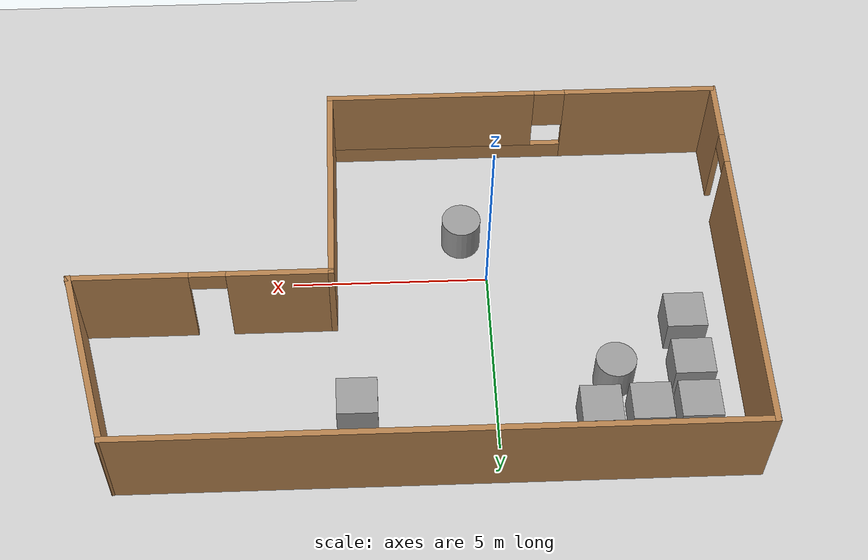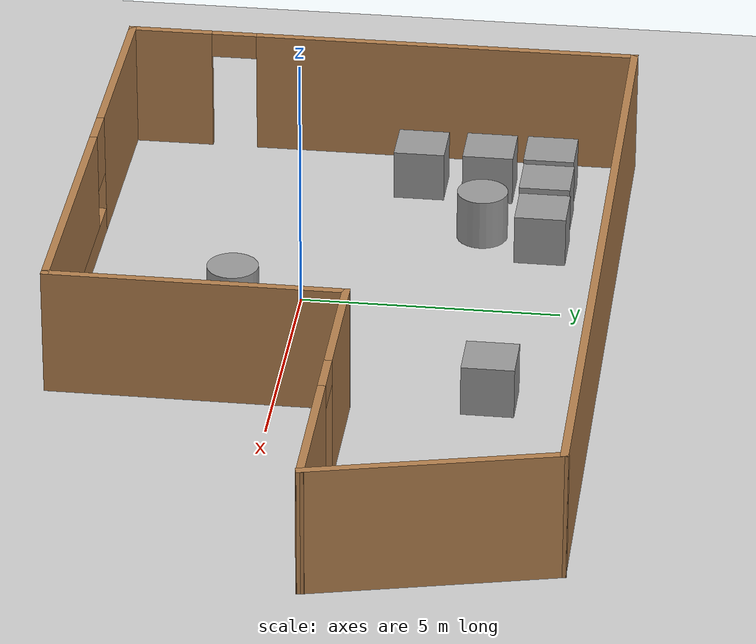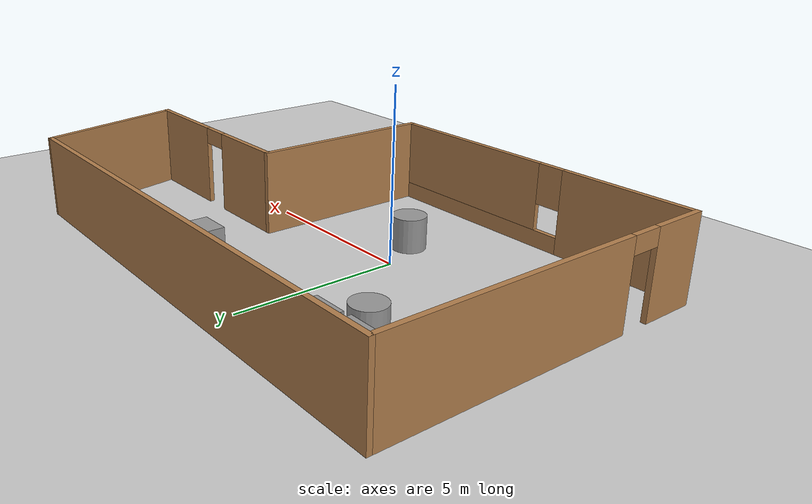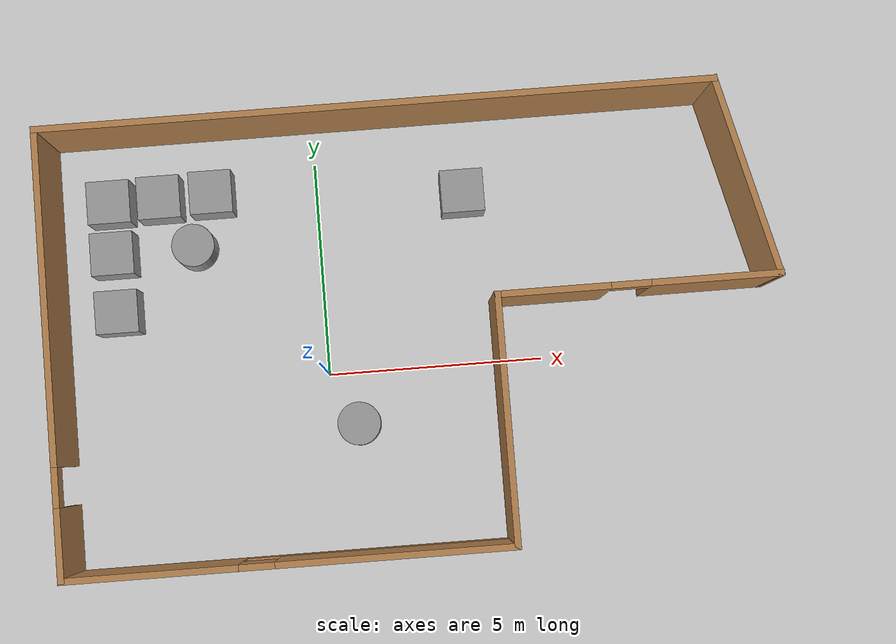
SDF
<sdf version="1.7">
 <world name="default">
  <light name="sun" type="directional">
   <pose>0 0 10 0 -0 0</pose>
   <diffuse>0.8 0.8 0.8 1</diffuse>
   <specular>0.2 0.2 0.2 1</specular>
   <attenuation>
    <range>1000</range>
    <constant>0.9</constant>
    <linear>0.01</linear>
    <quadratic>0.001</quadratic>
   </attenuation>
   <direction>-0.5 0.1 -0.9</direction>
   <spot><inner_angle>0</inner_angle><outer_angle>0</outer_angle><falloff>0</falloff></spot>
  </light>
  <model name="ground_plane">
   <static>1</static>
   <link name="link">
    <collision name="collision">
     <geometry><plane><normal>0 0 1</normal><size>100 100</size></plane></geometry>
     <surface>
      <contact><collide_bitmask>65535</collide_bitmask></contact>
      <friction><ode><mu>100</mu><mu2>50</mu2></ode></friction>
     </surface>
    </collision>
    <visual name="visual">
     <cast_shadows>0</cast_shadows>
     <geometry><plane><normal>0 0 1</normal><size>100 100</size></plane></geometry>
     <material>
      <script><uri>file://media/materials/scripts/gazebo.material</uri><name>Gazebo/Grey</name></script>
     </material>
    </visual>
   </link>
  </model>
  <gravity>0 0 -9.8</gravity>
  <magnetic_field>6e-06 2.3e-05 -4.2e-05</magnetic_field>
  <atmosphere type="adiabatic"/>
  <physics type="ode">
   <max_step_size>0.001</max_step_size>
   <real_time_factor>1</real_time_factor>
   <real_time_update_rate>1000</real_time_update_rate>
  </physics>
  <scene><ambient>0.4 0.4 0.4 1</ambient><background>0.7 0.7 0.7 1</background><shadows>1</shadows></scene>
  <spherical_coordinates>
   <surface_model>EARTH_WGS84</surface_model>
   <latitude_deg>0</latitude_deg>
   <longitude_deg>0</longitude_deg>
   <elevation>0</elevation>
   <heading_deg>0</heading_deg>
  </spherical_coordinates>
  <model name="www">
   <pose>2.08124 0.830246 0 0 -0 0</pose>
   <link name="Wall_1">
    <collision name="Wall_1_Collision">
     <geometry><box><size>15.5 0.15 2.5</size></box></geometry>
     <pose>0 0 1.25 0 -0 0</pose>
    </collision>
    <visual name="Wall_1_Visual">
     <pose>0 0 1.25 0 -0 0</pose>
     <geometry><box><size>15.5 0.15 2.5</size></box></geometry>
     <material>
      <script><uri>file://media/materials/scripts/gazebo.material</uri><name>Gazebo/Wood</name></script>
      <ambient>1 1 1 1</ambient>
     </material>
     <meta><layer>0</layer></meta>
    </visual>
    <pose>-0.557832 5.04217 0 0 -0 3.14159</pose>
   </link>
   <link name="Wall_2">
    <pose>-8.23283 -0.007832 0 0 -0 -1.5708</pose>
    <visual name="Wall_2_Visual_0">
     <pose>-1.29555 0 1.25 0 -0 0</pose>
     <geometry><box><size>7.6589 0.15 2.5</size></box></geometry>
     <material>
      <script><uri>file://media/materials/scripts/gazebo.material</uri><name>Gazebo/Wood</name></script>
      <ambient>1 1 1 1</ambient>
     </material>
     <meta><layer>0</layer></meta>
    </visual>
    <collision name="Wall_2_Collision_0">
     <geometry><box><size>7.6589 0.15 2.5</size></box></geometry>
     <pose>-1.29555 0 1.25 0 -0 0</pose>
    </collision>
    <visual name="Wall_2_Visual_1">
     <pose>4.27945 0 1.25 0 -0 0</pose>
     <geometry><box><size>1.6911 0.15 2.5</size></box></geometry>
     <material>
      <script><uri>file://media/materials/scripts/gazebo.material</uri><name>Gazebo/Wood</name></script>
      <ambient>1 1 1 1</ambient>
     </material>
     <meta><layer>0</layer></meta>
    </visual>
    <collision name="Wall_2_Collision_1">
     <geometry><box><size>1.6911 0.15 2.5</size></box></geometry>
     <pose>4.27945 0 1.25 0 -0 0</pose>
    </collision>
    <visual name="Wall_2_Visual_2">
     <pose>2.9839 0 2.25 0 -0 0</pose>
     <geometry><box><size>0.9 0.15 0.5</size></box></geometry>
     <material>
      <script><uri>file://media/materials/scripts/gazebo.material</uri><name>Gazebo/Wood</name></script>
      <ambient>1 1 1 1</ambient>
     </material>
     <meta><layer>0</layer></meta>
    </visual>
    <collision name="Wall_2_Collision_2">
     <geometry><box><size>0.9 0.15 0.5</size></box></geometry>
     <pose>2.9839 0 2.25 0 -0 0</pose>
    </collision>
   </link>
   <link name="Wall_3">
    <pose>-3.18283 -5.05783 0 0 -0 0</pose>
    <visual name="Wall_3_Visual_0">
     <pose>-3.12725 0 1.25 0 -0 0</pose>
     <geometry><box><size>3.9955 0.15 2.5</size></box></geometry>
     <material>
      <script><uri>file://media/materials/scripts/gazebo.material</uri><name>Gazebo/Wood</name></script>
      <ambient>1 1 1 1</ambient>
     </material>
     <meta><layer>0</layer></meta>
    </visual>
    <collision name="Wall_3_Collision_0">
     <geometry><box><size>3.9955 0.15 2.5</size></box></geometry>
     <pose>-3.12725 0 1.25 0 -0 0</pose>
    </collision>
    <visual name="Wall_3_Visual_1">
     <pose>1.99775 0 0.25 0 -0 0</pose>
     <geometry><box><size>6.2545 0.15 0.5</size></box></geometry>
     <material>
      <script><uri>file://media/materials/scripts/gazebo.material</uri><name>Gazebo/Wood</name></script>
      <ambient>1 1 1 1</ambient>
     </material>
     <meta><layer>0</layer></meta>
    </visual>
    <collision name="Wall_3_Collision_1">
     <geometry><box><size>6.2545 0.15 0.5</size></box></geometry>
     <pose>1.99775 0 0.25 0 -0 0</pose>
    </collision>
    <visual name="Wall_3_Visual_2">
     <pose>2.39775 0 1.5 0 -0 0</pose>
     <geometry><box><size>5.4545 0.15 2</size></box></geometry>
     <material>
      <script><uri>file://media/materials/scripts/gazebo.material</uri><name>Gazebo/Wood</name></script>
      <ambient>1 1 1 1</ambient>
     </material>
     <meta><layer>0</layer></meta>
    </visual>
    <collision name="Wall_3_Collision_2">
     <geometry><box><size>5.4545 0.15 2</size></box></geometry>
     <pose>2.39775 0 1.5 0 -0 0</pose>
    </collision>
    <visual name="Wall_3_Visual_3">
     <pose>-0.729503 0 1.9 0 -0 0</pose>
     <geometry><box><size>0.8 0.15 1.2</size></box></geometry>
     <material>
      <script><uri>file://media/materials/scripts/gazebo.material</uri><name>Gazebo/Wood</name></script>
      <ambient>1 1 1 1</ambient>
     </material>
     <meta><layer>0</layer></meta>
    </visual>
    <collision name="Wall_3_Collision_3">
     <geometry><box><size>0.8 0.15 1.2</size></box></geometry>
     <pose>-0.729503 0 1.9 0 -0 0</pose>
    </collision>
   </link>
   <link name="Wall_4">
    <collision name="Wall_4_Collision">
     <geometry><box><size>5.75 0.15 2.5</size></box></geometry>
     <pose>0 0 1.25 0 -0 0</pose>
    </collision>
    <visual name="Wall_4_Visual">
     <pose>0 0 1.25 0 -0 0</pose>
     <geometry><box><size>5.75 0.15 2.5</size></box></geometry>
     <material>
      <script><uri>file://media/materials/scripts/gazebo.material</uri><name>Gazebo/Wood</name></script>
      <ambient>1 1 1 1</ambient>
     </material>
     <meta><layer>0</layer></meta>
    </visual>
    <pose>1.86717 -2.25783 0 0 -0 1.5708</pose>
   </link>
   <link name="Wall_5">
    <pose>5.04217 0.542168 0 0 -0 0</pose>
    <visual name="Wall_5_Visual_0">
     <pose>-1.93945 0 1.25 0 -0 0</pose>
     <geometry><box><size>2.62111 0.15 2.5</size></box></geometry>
     <material>
      <script><uri>file://media/materials/scripts/gazebo.material</uri><name>Gazebo/Wood</name></script>
      <ambient>1 1 1 1</ambient>
     </material>
     <meta><layer>0</layer></meta>
    </visual>
    <collision name="Wall_5_Collision_0">
     <geometry><box><size>2.62111 0.15 2.5</size></box></geometry>
     <pose>-1.93945 0 1.25 0 -0 0</pose>
    </collision>
    <visual name="Wall_5_Visual_1">
     <pose>1.76056 0 1.25 0 -0 0</pose>
     <geometry><box><size>2.97889 0.15 2.5</size></box></geometry>
     <material>
      <script><uri>file://media/materials/scripts/gazebo.material</uri><name>Gazebo/Wood</name></script>
      <ambient>1 1 1 1</ambient>
     </material>
     <meta><layer>0</layer></meta>
    </visual>
    <collision name="Wall_5_Collision_1">
     <geometry><box><size>2.97889 0.15 2.5</size></box></geometry>
     <pose>1.76056 0 1.25 0 -0 0</pose>
    </collision>
    <visual name="Wall_5_Visual_2">
     <pose>-0.17889 0 2.25 0 -0 0</pose>
     <geometry><box><size>0.9 0.15 0.5</size></box></geometry>
     <material>
      <script><uri>file://media/materials/scripts/gazebo.material</uri><name>Gazebo/Wood</name></script>
      <ambient>1 1 1 1</ambient>
     </material>
     <meta><layer>0</layer></meta>
    </visual>
    <collision name="Wall_5_Collision_2">
     <geometry><box><size>0.9 0.15 0.5</size></box></geometry>
     <pose>-0.17889 0 2.25 0 -0 0</pose>
    </collision>
   </link>
   <link name="Wall_6">
    <collision name="Wall_6_Collision">
     <geometry><box><size>4.78249 0.15 2.5</size></box></geometry>
     <pose>0 0 1.25 0 -0 0</pose>
    </collision>
    <visual name="Wall_6_Visual">
     <pose>0 0 1.25 0 -0 0</pose>
     <geometry><box><size>4.78249 0.15 2.5</size></box></geometry>
     <material>
      <script><uri>file://media/materials/scripts/gazebo.material</uri><name>Gazebo/Wood</name></script>
      <ambient>1 1 1 1</ambient>
     </material>
     <meta><layer>0</layer></meta>
    </visual>
    <pose>7.66717 2.79217 0 0 -0 1.81054</pose>
   </link>
   <static>1</static>
  </model>
  <model name="unit_cylinder">
   <pose>-2.93399 3.19412 0.499998 3e-06 -4e-06 0</pose>
   <link name="link">
    <inertial>
     <mass>1</mass>
     <inertia><ixx>0.145833</ixx><ixy>0</ixy><ixz>0</ixz><iyy>0.145833</iyy><iyz>0</iyz><izz>0.125</izz></inertia>
    </inertial>
    <collision name="collision">
     <geometry><cylinder><radius>0.5</radius><length>1</length></cylinder></geometry>
    </collision>
    <visual name="visual">
     <geometry><cylinder><radius>0.5</radius><length>1</length></cylinder></geometry>
     <material>
      <script><name>Gazebo/Grey</name><uri>file://media/materials/scripts/gazebo.material</uri></script>
     </material>
    </visual>
   </link>
  </model>
  <model name="unit_cylinder_0">
   <pose>0.617653 -1.22804 0.499992 -3e-06 4e-06 0</pose>
   <link name="link">
    <inertial>
     <mass>1</mass>
     <inertia><ixx>0.145833</ixx><ixy>0</ixy><ixz>0</ixz><iyy>0.145833</iyy><iyz>0</iyz><izz>0.125</izz></inertia>
    </inertial>
    <collision name="collision">
     <geometry><cylinder><radius>0.5</radius><length>1</length></cylinder></geometry>
    </collision>
    <visual name="visual">
     <geometry><cylinder><radius>0.5</radius><length>1</length></cylinder></geometry>
     <material>
      <script><name>Gazebo/Grey</name><uri>file://media/materials/scripts/gazebo.material</uri></script>
     </material>
    </visual>
   </link>
  </model>
  <model name="unit_box">
   <pose>-4.83941 4.3571 0.499995 -1e-05 -0 -0</pose>
   <link name="link">
    <inertial>
     <mass>1</mass>
     <inertia>
      <ixx>0.166667</ixx>
      <ixy>0</ixy>
      <ixz>0</ixz>
      <iyy>0.166667</iyy>
      <iyz>0</iyz>
      <izz>0.166667</izz>
     </inertia>
    </inertial>
    <collision name="collision"><geometry><box><size>1 1 1</size></box></geometry></collision>
    <visual name="visual">
     <geometry><box><size>1 1 1</size></box></geometry>
     <material>
      <script><name>Gazebo/Grey</name><uri>file://media/materials/scripts/gazebo.material</uri></script>
     </material>
    </visual>
   </link>
  </model>
  <model name="unit_box_0">
   <pose>-4.83397 3.14724 0.499995 0 1e-05 0</pose>
   <link name="link">
    <inertial>
     <mass>1</mass>
     <inertia>
      <ixx>0.166667</ixx>
      <ixy>0</ixy>
      <ixz>0</ixz>
      <iyy>0.166667</iyy>
      <iyz>0</iyz>
      <izz>0.166667</izz>
     </inertia>
    </inertial>
    <collision name="collision"><geometry><box><size>1 1 1</size></box></geometry></collision>
    <visual name="visual">
     <geometry><box><size>1 1 1</size></box></geometry>
     <material>
      <script><name>Gazebo/Grey</name><uri>file://media/materials/scripts/gazebo.material</uri></script>
     </material>
    </visual>
   </link>
  </model>
  <model name="unit_box_1">
   <pose>-4.812 1.78205 0.499995 -1e-05 -0 -0</pose>
   <link name="link">
    <inertial>
     <mass>1</mass>
     <inertia>
      <ixx>0.166667</ixx>
      <ixy>0</ixy>
      <ixz>0</ixz>
      <iyy>0.166667</iyy>
      <iyz>0</iyz>
      <izz>0.166667</izz>
     </inertia>
    </inertial>
    <collision name="collision"><geometry><box><size>1 1 1</size></box></geometry></collision>
    <visual name="visual">
     <geometry><box><size>1 1 1</size></box></geometry>
     <material>
      <script><name>Gazebo/Grey</name><uri>file://media/materials/scripts/gazebo.material</uri></script>
     </material>
    </visual>
   </link>
  </model>
  <model name="unit_box_2">
   <pose>-3.66928 4.38304 0.499995 0 1e-05 0</pose>
   <link name="link">
    <inertial>
     <mass>1</mass>
     <inertia>
      <ixx>0.166667</ixx>
      <ixy>0</ixy>
      <ixz>0</ixz>
      <iyy>0.166667</iyy>
      <iyz>0</iyz>
      <izz>0.166667</izz>
     </inertia>
    </inertial>
    <collision name="collision"><geometry><box><size>1 1 1</size></box></geometry></collision>
    <visual name="visual">
     <geometry><box><size>1 1 1</size></box></geometry>
     <material>
      <script><name>Gazebo/Grey</name><uri>file://media/materials/scripts/gazebo.material</uri></script>
     </material>
    </visual>
   </link>
  </model>
  <model name="unit_box_3">
   <pose>-2.45112 4.41441 0.499995 -1e-05 -0 0</pose>
   <link name="link">
    <inertial>
     <mass>1</mass>
     <inertia>
      <ixx>0.166667</ixx>
      <ixy>0</ixy>
      <ixz>0</ixz>
      <iyy>0.166667</iyy>
      <iyz>0</iyz>
      <izz>0.166667</izz>
     </inertia>
    </inertial>
    <collision name="collision"><geometry><box><size>1 1 1</size></box></geometry></collision>
    <visual name="visual">
     <geometry><box><size>1 1 1</size></box></geometry>
     <material>
      <script><name>Gazebo/Grey</name><uri>file://media/materials/scripts/gazebo.material</uri></script>
     </material>
    </visual>
   </link>
  </model>
  <model name="unit_box_4">
   <pose>3.40978 3.99877 0.5 0 -0 0</pose>
   <link name="link">
    <inertial>
     <mass>1</mass>
     <inertia>
      <ixx>0.166667</ixx>
      <ixy>0</ixy>
      <ixz>0</ixz>
      <iyy>0.166667</iyy>
      <iyz>0</iyz>
      <izz>0.166667</izz>
     </inertia>
    </inertial>
    <collision name="collision"><geometry><box><size>1 1 1</size></box></geometry></collision>
    <visual name="visual">
     <geometry><box><size>1 1 1</size></box></geometry>
     <material>
      <script><name>Gazebo/Grey</name><uri>file://media/materials/scripts/gazebo.material</uri></script>
     </material>
    </visual>
   </link>
  </model>
 </world>
</sdf>
